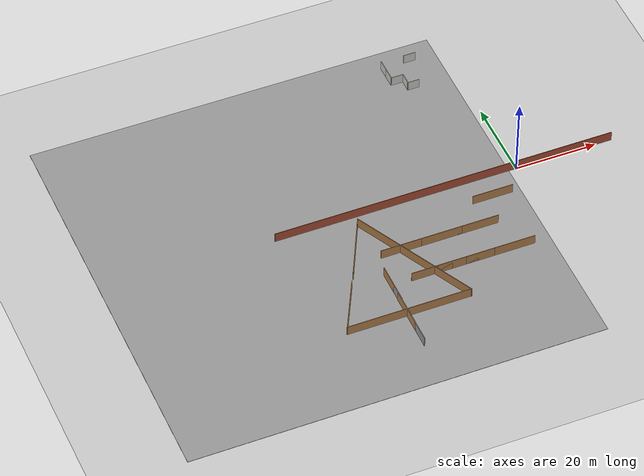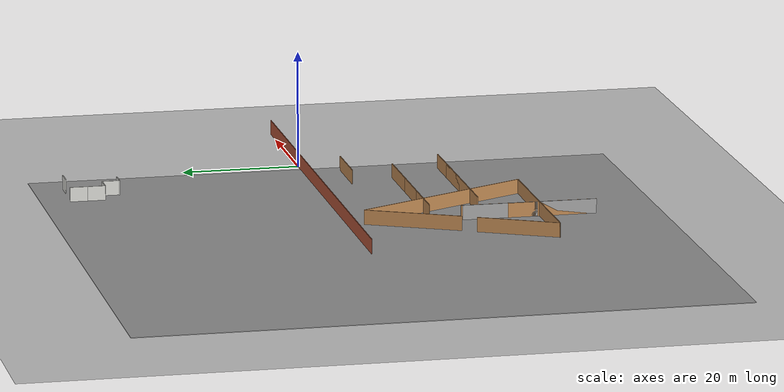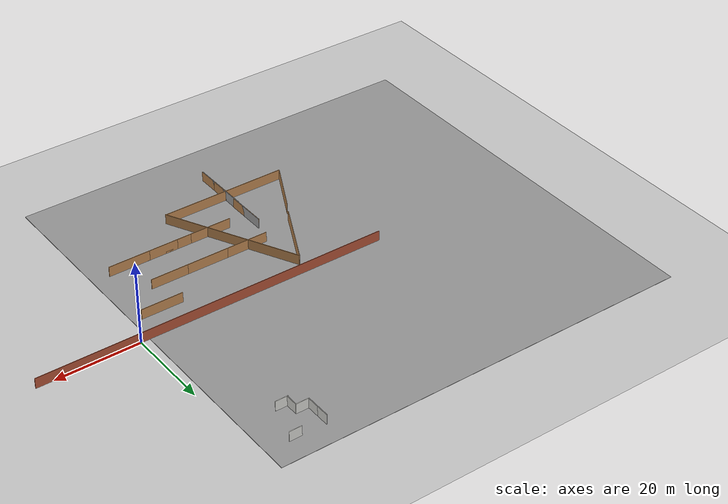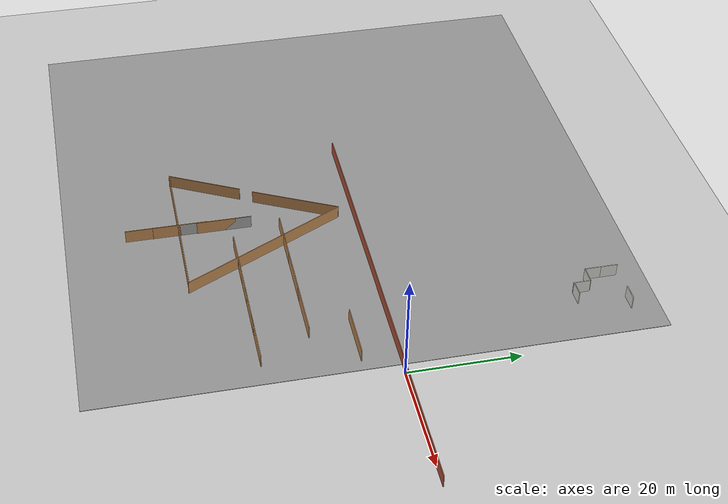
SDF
<sdf version="1.6">
 <world name="default">
  <model name="ground_plane">
   <static>1</static>
   <link name="link">
    <collision name="collision">
     <geometry><plane><normal>0 0 1</normal><size>100 100</size></plane></geometry>
     <surface><friction><ode><mu>100</mu><mu2>50</mu2></ode></friction></surface>
    </collision>
    <visual name="visual">
     <cast_shadows>0</cast_shadows>
     <geometry><plane><normal>0 0 1</normal><size>100 100</size></plane></geometry>
     <material>
      <script><uri>file://media/materials/scripts/gazebo.material</uri><name>Gazebo/Grey</name></script>
     </material>
    </visual>
   </link>
  </model>
  <model name="ground_plane_5">
   <static>1</static>
   <link name="link">
    <collision name="collision">
     <geometry><plane><normal>0 0 1</normal><size>100 100</size></plane></geometry>
     <surface><friction><ode><mu>100</mu><mu2>50</mu2></ode></friction></surface>
    </collision>
    <visual name="visual">
     <cast_shadows>0</cast_shadows>
     <geometry><plane><normal>0 0 1</normal><size>100 100</size></plane></geometry>
     <material>
      <script><uri>file://media/materials/scripts/gazebo.material</uri><name>Gazebo/Grey</name></script>
     </material>
    </visual>
   </link>
   <pose>-52 -3 0 0 -0 0</pose>
  </model>
  <model name="map_final_21">
   <pose>-18 0 0 0 -0 0</pose>
   <link name="Wall_7">
    <collision name="Wall_7_Collision">
     <geometry><box><size>84.15 0.15 2.5</size></box></geometry>
     <pose>0 0 1.25 0 -0 0</pose>
    </collision>
    <visual name="Wall_7_Visual">
     <pose>0 0 1.25 0 -0 0</pose>
     <geometry><box><size>84.15 0.15 2.5</size></box></geometry>
     <material>
      <script><uri>file://media/materials/scripts/gazebo.material</uri><name>Gazebo/Bricks</name></script>
      <ambient>1 1 1 1</ambient>
     </material>
    </visual>
    <pose>0 0 0 0 -0 3.14159</pose>
   </link>
   <static>1</static>
  </model>
  <model name="wall-10m-ofoghi_2">
   <pose>-9 -6.47267 0 0 -0 0</pose>
   <link name="Wall_22">
    <collision name="Wall_22_Collision">
     <geometry><box><size>10 0.15 2.5</size></box></geometry>
     <pose>0 0 1.25 0 -0 0</pose>
    </collision>
    <visual name="Wall_22_Visual">
     <pose>0 0 1.25 0 -0 0</pose>
     <geometry><box><size>10 0.15 2.5</size></box></geometry>
     <material>
      <script><uri>file://media/materials/scripts/gazebo.material</uri><name>Gazebo/Wood</name></script>
      <ambient>1 1 1 1</ambient>
     </material>
    </visual>
   </link>
   <static>1</static>
  </model>
  <model name="tr_layout_1">
   <pose>-40.956 -17.6326 0 0 -0 0</pose>
   <link name="Wall_0">
    <collision name="Wall_0_Collision">
     <geometry><box><size>30.15 0.15 2.5</size></box></geometry>
     <pose>0 0 1.25 0 -0 0</pose>
    </collision>
    <visual name="Wall_0_Visual">
     <pose>0 0 1.25 0 -0 0</pose>
     <geometry><box><size>30.15 0.15 2.5</size></box></geometry>
     <material>
      <script><uri>file://media/materials/scripts/gazebo.material</uri><name>Gazebo/Wood</name></script>
      <ambient>1 1 1 1</ambient>
     </material>
    </visual>
    <pose>-0.040638 -14.7092 0 0 -0 0</pose>
   </link>
   <link name="Wall_2">
    <collision name="Wall_2_Collision">
     <geometry><box><size>14.059 0.15 2.5</size></box></geometry>
     <pose>0 0 1.25 0 -0 0</pose>
    </collision>
    <visual name="Wall_2_Visual">
     <pose>0 0 1.25 0 -0 0</pose>
     <geometry><box><size>14.059 0.15 2.5</size></box></geometry>
     <material>
      <script><uri>file://media/materials/scripts/gazebo.material</uri><name>Gazebo/Wood</name></script>
      <ambient>1 1 1 1</ambient>
     </material>
    </visual>
    <pose>-11.8706 -8.51916 0 0 -0 1.0975</pose>
   </link>
   <link name="Wall_4">
    <collision name="Wall_4_Collision">
     <geometry><box><size>33.2446 0.15 2.5</size></box></geometry>
     <pose>0 0 1.25 0 -0 0</pose>
    </collision>
    <visual name="Wall_4_Visual">
     <pose>0 0 1.25 0 -0 0</pose>
     <geometry><box><size>33.2446 0.15 2.5</size></box></geometry>
     <material>
      <script><uri>file://media/materials/scripts/gazebo.material</uri><name>Gazebo/Wood</name></script>
      <ambient>1 1 1 1</ambient>
     </material>
    </visual>
    <pose>7.54073 -0.040527 0 0 0 -1.10039</pose>
   </link>
   <link name="Wall_6">
    <collision name="Wall_6_Collision">
     <geometry><box><size>16.6075 0.15 2.5</size></box></geometry>
     <pose>0 0 1.25 0 -0 0</pose>
    </collision>
    <visual name="Wall_6_Visual">
     <pose>0 0 1.25 0 -0 0</pose>
     <geometry><box><size>16.6075 0.15 2.5</size></box></geometry>
     <material>
      <script><uri>file://media/materials/scripts/gazebo.material</uri><name>Gazebo/Wood</name></script>
      <ambient>1 1 1 1</ambient>
     </material>
    </visual>
    <pose>-3.70064 7.42084 0 0 -0 1.10987</pose>
   </link>
   <static>1</static>
  </model>
  <model name="wall-10m-ofoghi_3">
   <pose>-25 -14 0 0 -0 0</pose>
   <link name="Wall_22">
    <collision name="Wall_22_Collision">
     <geometry><box><size>10 0.15 2.5</size></box></geometry>
     <pose>0 0 1.25 0 -0 0</pose>
    </collision>
    <visual name="Wall_22_Visual">
     <pose>0 0 1.25 0 -0 0</pose>
     <geometry><box><size>10 0.15 2.5</size></box></geometry>
     <material>
      <script><uri>file://media/materials/scripts/gazebo.material</uri><name>Gazebo/Wood</name></script>
      <ambient>1 1 1 1</ambient>
     </material>
    </visual>
   </link>
   <static>1</static>
  </model>
  <model name="wall-10m-ofoghi_4">
   <pose>-16 -14 0 0 -0 0</pose>
   <link name="Wall_22">
    <collision name="Wall_22_Collision">
     <geometry><box><size>10 0.15 2.5</size></box></geometry>
     <pose>0 0 1.25 0 -0 0</pose>
    </collision>
    <visual name="Wall_22_Visual">
     <pose>0 0 1.25 0 -0 0</pose>
     <geometry><box><size>10 0.15 2.5</size></box></geometry>
     <material>
      <script><uri>file://media/materials/scripts/gazebo.material</uri><name>Gazebo/Wood</name></script>
      <ambient>1 1 1 1</ambient>
     </material>
    </visual>
   </link>
   <static>1</static>
  </model>
  <model name="wall-10m-ofoghi_5">
   <pose>-35 -14 0 0 -0 0</pose>
   <link name="Wall_22">
    <collision name="Wall_22_Collision">
     <geometry><box><size>10 0.15 2.5</size></box></geometry>
     <pose>0 0 1.25 0 -0 0</pose>
    </collision>
    <visual name="Wall_22_Visual">
     <pose>0 0 1.25 0 -0 0</pose>
     <geometry><box><size>10 0.15 2.5</size></box></geometry>
     <material>
      <script><uri>file://media/materials/scripts/gazebo.material</uri><name>Gazebo/Wood</name></script>
      <ambient>1 1 1 1</ambient>
     </material>
    </visual>
   </link>
   <static>1</static>
  </model>
  <model name="wall-10m-ofoghi_6">
   <pose>-31.4121 -23 0 0 -0 0</pose>
   <link name="Wall_22">
    <collision name="Wall_22_Collision">
     <geometry><box><size>10 0.15 2.5</size></box></geometry>
     <pose>0 0 1.25 0 -0 0</pose>
    </collision>
    <visual name="Wall_22_Visual">
     <pose>0 0 1.25 0 -0 0</pose>
     <geometry><box><size>10 0.15 2.5</size></box></geometry>
     <material>
      <script><uri>file://media/materials/scripts/gazebo.material</uri><name>Gazebo/Wood</name></script>
      <ambient>1 1 1 1</ambient>
     </material>
    </visual>
   </link>
   <static>1</static>
  </model>
  <model name="wall-10m-ofoghi_7">
   <pose>-25 -23 0 0 -0 0</pose>
   <link name="Wall_22">
    <collision name="Wall_22_Collision">
     <geometry><box><size>10 0.15 2.5</size></box></geometry>
     <pose>0 0 1.25 0 -0 0</pose>
    </collision>
    <visual name="Wall_22_Visual">
     <pose>0 0 1.25 0 -0 0</pose>
     <geometry><box><size>10 0.15 2.5</size></box></geometry>
     <material>
      <script><uri>file://media/materials/scripts/gazebo.material</uri><name>Gazebo/Wood</name></script>
      <ambient>1 1 1 1</ambient>
     </material>
    </visual>
   </link>
   <static>1</static>
  </model>
  <model name="wall-10m-ofoghi_8">
   <pose>-18 -23 0 0 -0 0</pose>
   <link name="Wall_22">
    <collision name="Wall_22_Collision">
     <geometry><box><size>10 0.15 2.5</size></box></geometry>
     <pose>0 0 1.25 0 -0 0</pose>
    </collision>
    <visual name="Wall_22_Visual">
     <pose>0 0 1.25 0 -0 0</pose>
     <geometry><box><size>10 0.15 2.5</size></box></geometry>
     <material>
      <script><uri>file://media/materials/scripts/gazebo.material</uri><name>Gazebo/Wood</name></script>
      <ambient>1 1 1 1</ambient>
     </material>
    </visual>
   </link>
   <static>1</static>
  </model>
  <model name="wall-10m-ofoghi_9">
   <pose>-11 -23 0 0 -0 0</pose>
   <link name="Wall_22">
    <collision name="Wall_22_Collision">
     <geometry><box><size>10 0.15 2.5</size></box></geometry>
     <pose>0 0 1.25 0 -0 0</pose>
    </collision>
    <visual name="Wall_22_Visual">
     <pose>0 0 1.25 0 -0 0</pose>
     <geometry><box><size>10 0.15 2.5</size></box></geometry>
     <material>
      <script><uri>file://media/materials/scripts/gazebo.material</uri><name>Gazebo/Wood</name></script>
      <ambient>1 1 1 1</ambient>
     </material>
    </visual>
   </link>
   <static>1</static>
  </model>
  <model name="wall-10m-amodi_2">
   <pose>-41.5143 -32 0 0 -0 0</pose>
   <link name="Wall_24">
    <collision name="Wall_24_Collision">
     <geometry><box><size>10 0.15 2.5</size></box></geometry>
     <pose>0 0 1.25 0 -0 0</pose>
    </collision>
    <visual name="Wall_24_Visual">
     <pose>0 0 1.25 0 -0 0</pose>
     <geometry><box><size>10 0.15 2.5</size></box></geometry>
     <material>
      <script><uri>file://media/materials/scripts/gazebo.material</uri><name>Gazebo/Grey</name></script>
      <ambient>1 1 1 1</ambient>
     </material>
    </visual>
    <pose>0 -0 0 0 0 -1.5708</pose>
   </link>
   <link name="Wall_25">
    <collision name="Wall_25_Collision">
     <geometry><box><size>10 0.15 2.5</size></box></geometry>
     <pose>0 0 1.25 0 -0 0</pose>
    </collision>
    <visual name="Wall_25_Visual">
     <pose>0 0 1.25 0 -0 0</pose>
     <geometry><box><size>10 0.15 2.5</size></box></geometry>
     <material>
      <script><uri>file://media/materials/scripts/gazebo.material</uri><name>Gazebo/Wood</name></script>
      <ambient>1 1 1 1</ambient>
     </material>
    </visual>
    <pose>0 -0 0 0 -0 1.5708</pose>
   </link>
   <static>1</static>
  </model>
  <model name="wall-10m-amodi_3">
   <pose>-41.5454 -37 0 0 -0 0</pose>
   <link name="Wall_24">
    <collision name="Wall_24_Collision">
     <geometry><box><size>10 0.15 2.5</size></box></geometry>
     <pose>0 0 1.25 0 -0 0</pose>
    </collision>
    <visual name="Wall_24_Visual">
     <pose>0 0 1.25 0 -0 0</pose>
     <geometry><box><size>10 0.15 2.5</size></box></geometry>
     <material>
      <script><uri>file://media/materials/scripts/gazebo.material</uri><name>Gazebo/Grey</name></script>
      <ambient>1 1 1 1</ambient>
     </material>
    </visual>
    <pose>0 -0 0 0 0 -1.5708</pose>
   </link>
   <link name="Wall_25">
    <collision name="Wall_25_Collision">
     <geometry><box><size>10 0.15 2.5</size></box></geometry>
     <pose>0 0 1.25 0 -0 0</pose>
    </collision>
    <visual name="Wall_25_Visual">
     <pose>0 0 1.25 0 -0 0</pose>
     <geometry><box><size>10 0.15 2.5</size></box></geometry>
     <material>
      <script><uri>file://media/materials/scripts/gazebo.material</uri><name>Gazebo/Wood</name></script>
      <ambient>1 1 1 1</ambient>
     </material>
    </visual>
    <pose>0 -0 0 0 -0 1.5708</pose>
   </link>
   <static>1</static>
  </model>
  <model name="wall-10m-amodi_6">
   <pose>-41.4274 -24 0 0 -0 0</pose>
   <link name="Wall_24">
    <collision name="Wall_24_Collision">
     <geometry><box><size>10 0.15 2.5</size></box></geometry>
     <pose>0 0 1.25 0 -0 0</pose>
    </collision>
    <visual name="Wall_24_Visual">
     <pose>0 0 1.25 0 -0 0</pose>
     <geometry><box><size>10 0.15 2.5</size></box></geometry>
     <material>
      <script><uri>file://media/materials/scripts/gazebo.material</uri><name>Gazebo/Grey</name></script>
      <ambient>1 1 1 1</ambient>
     </material>
    </visual>
    <pose>0 -0 0 0 0 -1.5708</pose>
   </link>
   <link name="Wall_25">
    <collision name="Wall_25_Collision">
     <geometry><box><size>10 0.15 2.5</size></box></geometry>
     <pose>0 0 1.25 0 -0 0</pose>
    </collision>
    <visual name="Wall_25_Visual">
     <pose>0 0 1.25 0 -0 0</pose>
     <geometry><box><size>10 0.15 2.5</size></box></geometry>
     <material>
      <script><uri>file://media/materials/scripts/gazebo.material</uri><name>Gazebo/Wood</name></script>
      <ambient>1 1 1 1</ambient>
     </material>
    </visual>
    <pose>0 -0 0 0 -0 1.5708</pose>
   </link>
   <static>1</static>
  </model>
  <model name="concrete_wall">
   <pose>-15.8657 37.6157 0 0 -0 0</pose>
   <link name="Wall_0">
    <collision name="Wall_0_Collision">
     <geometry><box><size>3 0.15 2.5</size></box></geometry>
     <pose>0 0 1.25 0 -0 0</pose>
    </collision>
    <visual name="Wall_0_Visual">
     <pose>0 0 1.25 0 -0 0</pose>
     <geometry><box><size>3 0.15 2.5</size></box></geometry>
     <material>
      <script><uri>file://media/materials/scripts/gazebo.material</uri><name>Gazebo/CeilingTiled</name></script>
      <ambient>1 1 1 1</ambient>
     </material>
     <meta><layer>0</layer></meta>
    </visual>
    <pose>0 0 0 0 -0 1.5708</pose>
   </link>
   <static>1</static>
  </model>
  <model name="concrete_wall_clone">
   <pose>-15.8646 40.6072 0 0 -0 0</pose>
   <link name="Wall_0">
    <collision name="Wall_0_Collision">
     <geometry><box><size>3 0.15 2.5</size></box></geometry>
     <pose>0 0 1.25 0 -0 0</pose>
    </collision>
    <visual name="Wall_0_Visual">
     <pose>0 0 1.25 0 -0 0</pose>
     <geometry><box><size>3 0.15 2.5</size></box></geometry>
     <material>
      <script><uri>file://media/materials/scripts/gazebo.material</uri><name>Gazebo/CeilingTiled</name></script>
      <ambient>1 1 1 1</ambient>
     </material>
     <meta><layer>0</layer></meta>
    </visual>
    <pose>0 0 0 0 -0 1.5708</pose>
   </link>
   <static>1</static>
  </model>
  <model name="concrete_wall_clone_3">
   <pose>-12.8557 34.5996 0 0 -0 0</pose>
   <link name="Wall_0">
    <collision name="Wall_0_Collision">
     <geometry><box><size>3 0.15 2.5</size></box></geometry>
     <pose>0 0 1.25 0 -0 0</pose>
    </collision>
    <visual name="Wall_0_Visual">
     <pose>0 0 1.25 0 -0 0</pose>
     <geometry><box><size>3 0.15 2.5</size></box></geometry>
     <material>
      <script><uri>file://media/materials/scripts/gazebo.material</uri><name>Gazebo/CeilingTiled</name></script>
      <ambient>1 1 1 1</ambient>
     </material>
     <meta><layer>0</layer></meta>
    </visual>
    <pose>0 0 0 0 -0 1.5708</pose>
   </link>
   <static>1</static>
  </model>
  <model name="concrete_wall_0_clone_0">
   <pose>-11.5429 33.1754 0 0 -0 1.57079</pose>
   <link name="Wall_0">
    <collision name="Wall_0_Collision">
     <geometry><box><size>3 0.15 2.5</size></box></geometry>
     <pose>0 0 1.25 0 -0 0</pose>
    </collision>
    <visual name="Wall_0_Visual">
     <pose>0 0 1.25 0 -0 0</pose>
     <geometry><box><size>3 0.15 2.5</size></box></geometry>
     <material>
      <script><uri>file://media/materials/scripts/gazebo.material</uri><name>Gazebo/CeilingTiled</name></script>
      <ambient>1 1 1 1</ambient>
     </material>
     <meta><layer>0</layer></meta>
    </visual>
    <pose>0 0 0 0 -0 1.5708</pose>
   </link>
   <static>1</static>
  </model>
  <model name="concrete_wall_0_clone_1">
   <pose>-14.3076 36.1296 0 0 -0 1.57079</pose>
   <link name="Wall_0">
    <collision name="Wall_0_Collision">
     <geometry><box><size>3 0.15 2.5</size></box></geometry>
     <pose>0 0 1.25 0 -0 0</pose>
    </collision>
    <visual name="Wall_0_Visual">
     <pose>0 0 1.25 0 -0 0</pose>
     <geometry><box><size>3 0.15 2.5</size></box></geometry>
     <material>
      <script><uri>file://media/materials/scripts/gazebo.material</uri><name>Gazebo/CeilingTiled</name></script>
      <ambient>1 1 1 1</ambient>
     </material>
     <meta><layer>0</layer></meta>
    </visual>
    <pose>0 0 0 0 -0 1.5708</pose>
   </link>
   <static>1</static>
  </model>
  <model name="concrete_wall_0_clone_2">
   <pose>-8.73802 41.867 0 0 -0 1.57079</pose>
   <link name="Wall_0">
    <collision name="Wall_0_Collision">
     <geometry><box><size>3 0.15 2.5</size></box></geometry>
     <pose>0 0 1.25 0 -0 0</pose>
    </collision>
    <visual name="Wall_0_Visual">
     <pose>0 0 1.25 0 -0 0</pose>
     <geometry><box><size>3 0.15 2.5</size></box></geometry>
     <material>
      <script><uri>file://media/materials/scripts/gazebo.material</uri><name>Gazebo/CeilingTiled</name></script>
      <ambient>1 1 1 1</ambient>
     </material>
     <meta><layer>0</layer></meta>
    </visual>
    <pose>0 0 0 0 -0 1.5708</pose>
   </link>
   <static>1</static>
  </model>
 </world>
</sdf>
